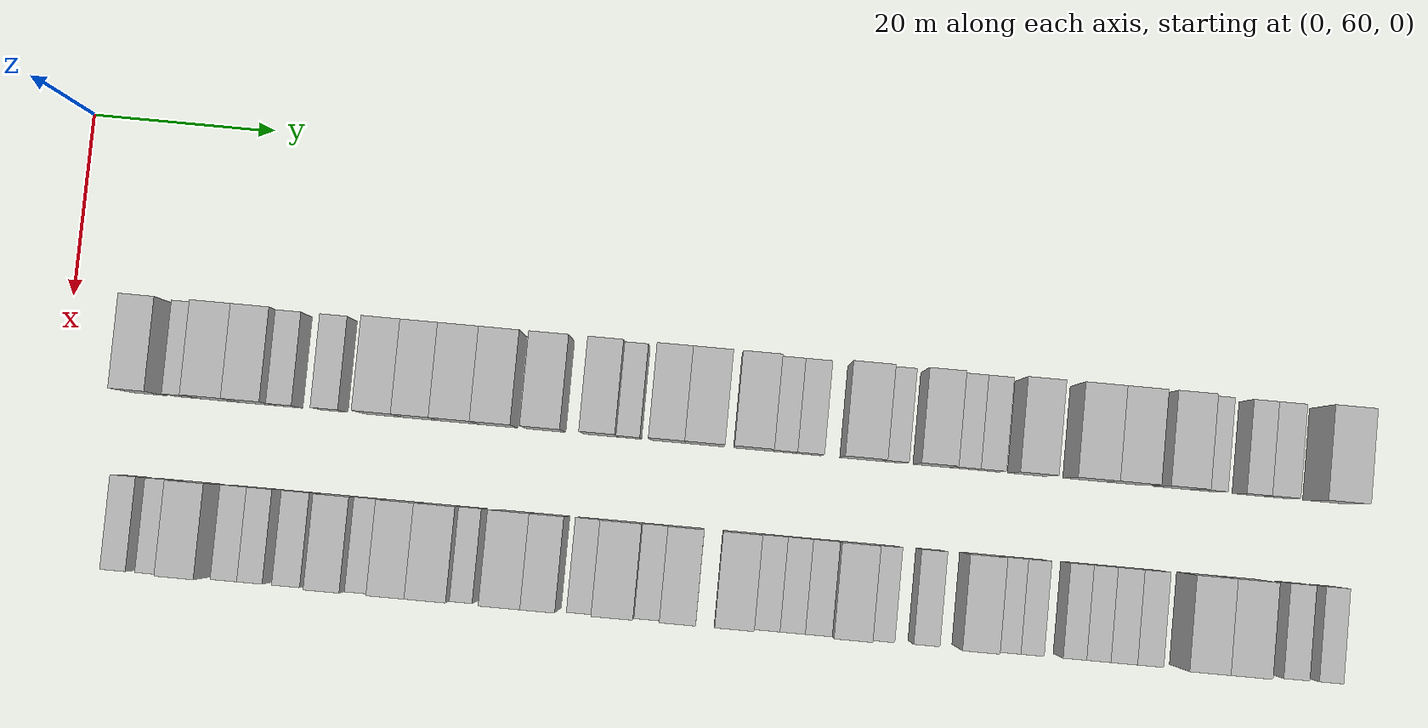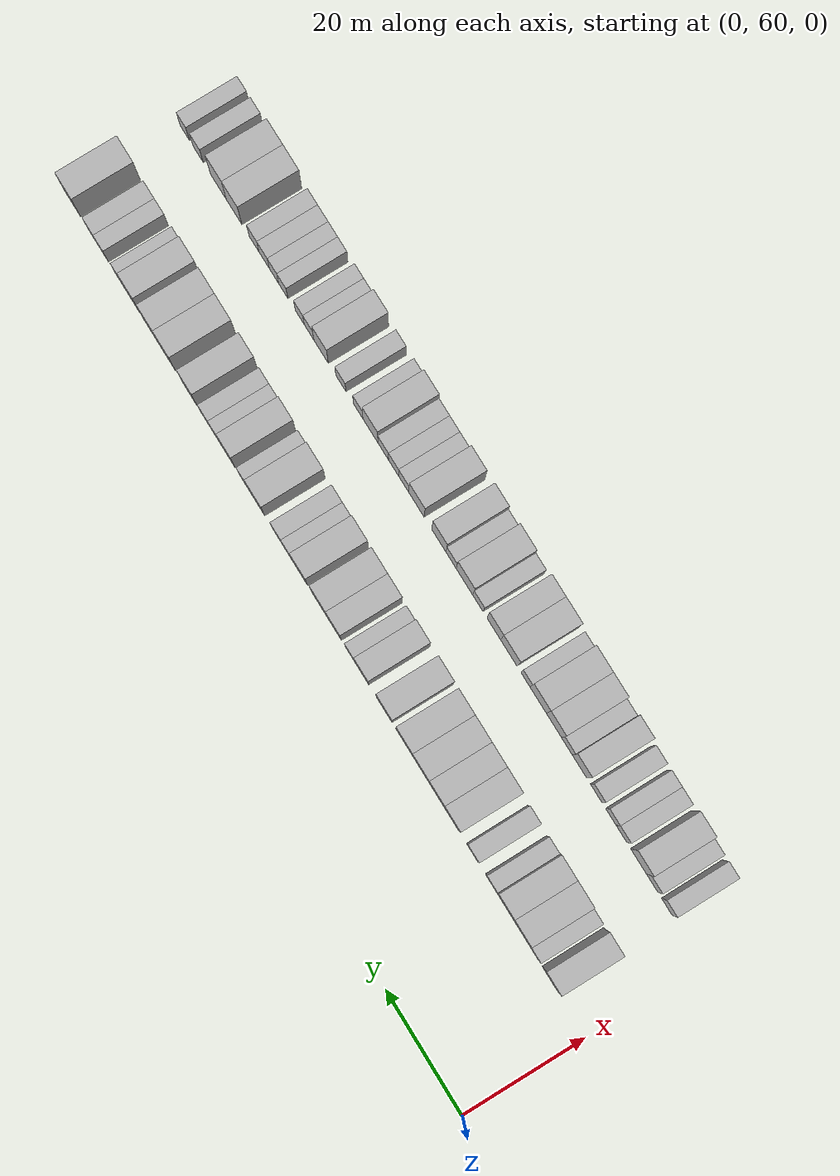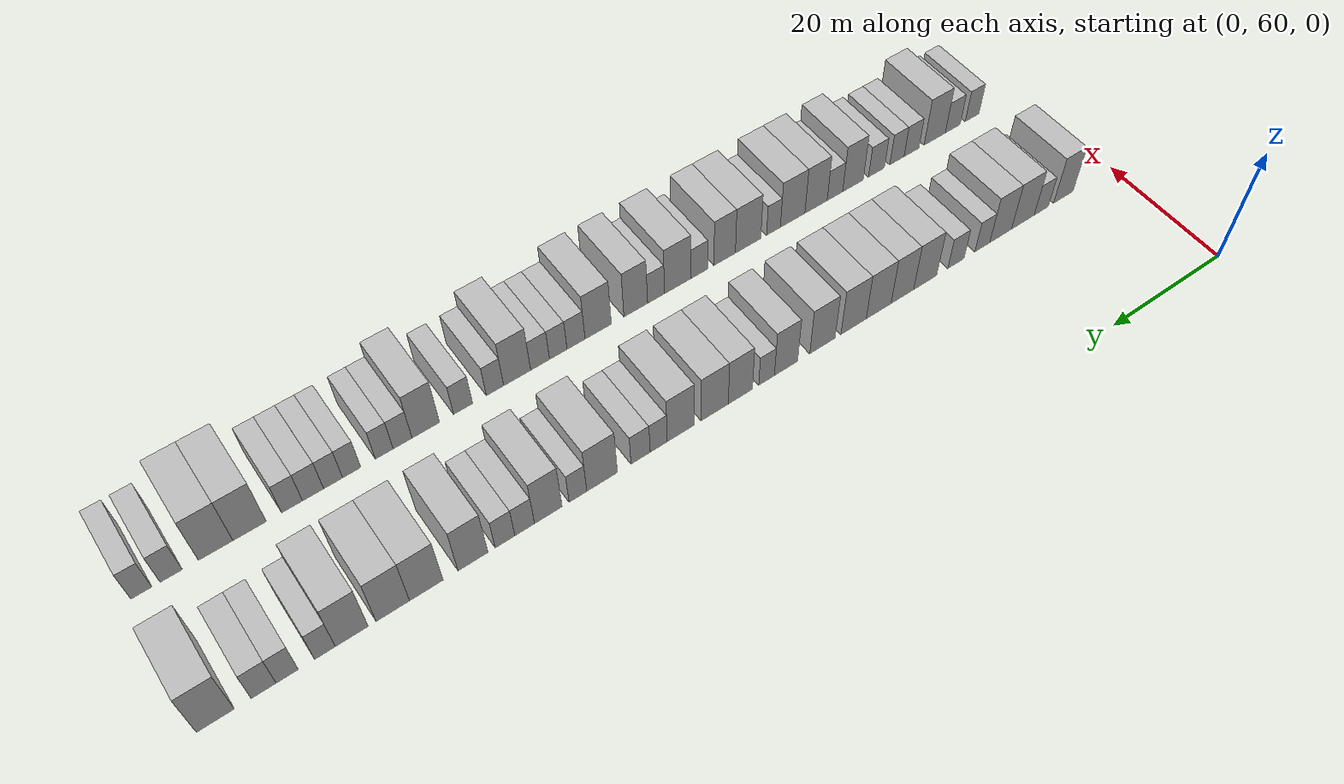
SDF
<sdf version="1.6">
 <world name="default">
  <model name="building_68">
   <static>1</static>
   <pose>25.0000 69.4559 0 0.000000 0.000000 0.000000</pose>
   <link name="link">
    <pose>0 0 4.50 0 0 0</pose>
    <collision name="collision"><geometry><box><size>10.0000 3.8007 9.0000</size></box></geometry></collision>
    <visual name="visual">
     <cast_shadows>0</cast_shadows>
     <geometry><box><size>10.0000 3.8007 9.0000</size></box></geometry>
     <material>
      <script>
       <uri>model://HANNAS_wall/materials/scripts</uri>
       <uri>model://HANNAS_wall/materials/textures</uri>
       <name>vrc/HANNAS_wall</name>
      </script>
     </material>
    </visual>
   </link>
  </model>
  <model name="building_69">
   <static>1</static>
   <pose>25.0000 73.7174 0 0.000000 0.000000 0.000000</pose>
   <link name="link">
    <pose>0 0 3.00 0 0 0</pose>
    <collision name="collision"><geometry><box><size>10.0000 2.7222 6.0000</size></box></geometry></collision>
    <visual name="visual">
     <cast_shadows>0</cast_shadows>
     <geometry><box><size>10.0000 2.7222 6.0000</size></box></geometry>
     <material>
      <script>
       <uri>model://HANNAS_wall/materials/scripts</uri>
       <uri>model://HANNAS_wall/materials/textures</uri>
       <name>vrc/HANNAS_wall</name>
      </script>
     </material>
    </visual>
   </link>
  </model>
  <model name="building_70">
   <static>1</static>
   <pose>25.0000 77.2315 0 0.000000 0.000000 0.000000</pose>
   <link name="link">
    <pose>0 0 4.50 0 0 0</pose>
    <collision name="collision"><geometry><box><size>10.0000 4.3060 9.0000</size></box></geometry></collision>
    <visual name="visual">
     <cast_shadows>0</cast_shadows>
     <geometry><box><size>10.0000 4.3060 9.0000</size></box></geometry>
     <material>
      <script>
       <uri>model://HANNAS_wall/materials/scripts</uri>
       <uri>model://HANNAS_wall/materials/textures</uri>
       <name>vrc/HANNAS_wall</name>
      </script>
     </material>
    </visual>
   </link>
  </model>
  <model name="building_71">
   <static>1</static>
   <pose>25.0000 81.4164 0 0.000000 0.000000 0.000000</pose>
   <link name="link">
    <pose>0 0 4.50 0 0 0</pose>
    <collision name="collision"><geometry><box><size>10.0000 4.0638 9.0000</size></box></geometry></collision>
    <visual name="visual">
     <cast_shadows>0</cast_shadows>
     <geometry><box><size>10.0000 4.0638 9.0000</size></box></geometry>
     <material>
      <script>
       <uri>model://HANNAS_wall/materials/scripts</uri>
       <uri>model://HANNAS_wall/materials/textures</uri>
       <name>vrc/HANNAS_wall</name>
      </script>
     </material>
    </visual>
   </link>
  </model>
  <model name="building_72">
   <static>1</static>
   <pose>25.0000 84.8159 0 0.000000 0.000000 0.000000</pose>
   <link name="link">
    <pose>0 0 3.00 0 0 0</pose>
    <collision name="collision"><geometry><box><size>10.0000 2.7354 6.0000</size></box></geometry></collision>
    <visual name="visual">
     <cast_shadows>0</cast_shadows>
     <geometry><box><size>10.0000 2.7354 6.0000</size></box></geometry>
     <material>
      <script>
       <uri>model://HANNAS_wall/materials/scripts</uri>
       <uri>model://HANNAS_wall/materials/textures</uri>
       <name>vrc/HANNAS_wall</name>
      </script>
     </material>
    </visual>
   </link>
  </model>
  <model name="building_73">
   <static>1</static>
   <pose>25.0000 89.6539 0 0.000000 0.000000 0.000000</pose>
   <link name="link">
    <pose>0 0 3.00 0 0 0</pose>
    <collision name="collision"><geometry><box><size>10.0000 2.9406 6.0000</size></box></geometry></collision>
    <visual name="visual">
     <cast_shadows>0</cast_shadows>
     <geometry><box><size>10.0000 2.9406 6.0000</size></box></geometry>
     <material>
      <script>
       <uri>model://HANNAS_wall/materials/scripts</uri>
       <uri>model://HANNAS_wall/materials/textures</uri>
       <name>vrc/HANNAS_wall</name>
      </script>
     </material>
    </visual>
   </link>
  </model>
  <model name="building_74">
   <static>1</static>
   <pose>25.0000 95.1711 0 0.000000 0.000000 0.000000</pose>
   <link name="link">
    <pose>0 0 4.50 0 0 0</pose>
    <collision name="collision"><geometry><box><size>10.0000 4.0937 9.0000</size></box></geometry></collision>
    <visual name="visual">
     <cast_shadows>0</cast_shadows>
     <geometry><box><size>10.0000 4.0937 9.0000</size></box></geometry>
     <material>
      <script>
       <uri>model://HANNAS_wall/materials/scripts</uri>
       <uri>model://HANNAS_wall/materials/textures</uri>
       <name>vrc/HANNAS_wall</name>
      </script>
     </material>
    </visual>
   </link>
  </model>
  <model name="building_75">
   <static>1</static>
   <pose>25.0000 99.1989 0 0.000000 0.000000 0.000000</pose>
   <link name="link">
    <pose>0 0 4.50 0 0 0</pose>
    <collision name="collision"><geometry><box><size>10.0000 3.9620 9.0000</size></box></geometry></collision>
    <visual name="visual">
     <cast_shadows>0</cast_shadows>
     <geometry><box><size>10.0000 3.9620 9.0000</size></box></geometry>
     <material>
      <script>
       <uri>model://HANNAS_wall/materials/scripts</uri>
       <uri>model://HANNAS_wall/materials/textures</uri>
       <name>vrc/HANNAS_wall</name>
      </script>
     </material>
    </visual>
   </link>
  </model>
  <model name="building_76">
   <static>1</static>
   <pose>25.0000 103.3308 0 0.000000 0.000000 0.000000</pose>
   <link name="link">
    <pose>0 0 4.50 0 0 0</pose>
    <collision name="collision"><geometry><box><size>10.0000 4.3018 9.0000</size></box></geometry></collision>
    <visual name="visual">
     <cast_shadows>0</cast_shadows>
     <geometry><box><size>10.0000 4.3018 9.0000</size></box></geometry>
     <material>
      <script>
       <uri>model://HANNAS_wall/materials/scripts</uri>
       <uri>model://HANNAS_wall/materials/textures</uri>
       <name>vrc/HANNAS_wall</name>
      </script>
     </material>
    </visual>
   </link>
  </model>
  <model name="building_77">
   <static>1</static>
   <pose>25.0000 107.6206 0 0.000000 0.000000 0.000000</pose>
   <link name="link">
    <pose>0 0 4.50 0 0 0</pose>
    <collision name="collision"><geometry><box><size>10.0000 4.2779 9.0000</size></box></geometry></collision>
    <visual name="visual">
     <cast_shadows>0</cast_shadows>
     <geometry><box><size>10.0000 4.2779 9.0000</size></box></geometry>
     <material>
      <script>
       <uri>model://HANNAS_wall/materials/scripts</uri>
       <uri>model://HANNAS_wall/materials/textures</uri>
       <name>vrc/HANNAS_wall</name>
      </script>
     </material>
    </visual>
   </link>
  </model>
  <model name="building_78">
   <static>1</static>
   <pose>25.0000 112.8596 0 0.000000 0.000000 0.000000</pose>
   <link name="link">
    <pose>0 0 4.50 0 0 0</pose>
    <collision name="collision"><geometry><box><size>10.0000 4.2000 9.0000</size></box></geometry></collision>
    <visual name="visual">
     <cast_shadows>0</cast_shadows>
     <geometry><box><size>10.0000 4.2000 9.0000</size></box></geometry>
     <material>
      <script>
       <uri>model://HANNAS_wall/materials/scripts</uri>
       <uri>model://HANNAS_wall/materials/textures</uri>
       <name>vrc/HANNAS_wall</name>
      </script>
     </material>
    </visual>
   </link>
  </model>
  <model name="building_79">
   <static>1</static>
   <pose>25.0000 118.8472 0 0.000000 0.000000 0.000000</pose>
   <link name="link">
    <pose>0 0 4.50 0 0 0</pose>
    <collision name="collision"><geometry><box><size>10.0000 3.7751 9.0000</size></box></geometry></collision>
    <visual name="visual">
     <cast_shadows>0</cast_shadows>
     <geometry><box><size>10.0000 3.7751 9.0000</size></box></geometry>
     <material>
      <script>
       <uri>model://HANNAS_wall/materials/scripts</uri>
       <uri>model://HANNAS_wall/materials/textures</uri>
       <name>vrc/HANNAS_wall</name>
      </script>
     </material>
    </visual>
   </link>
  </model>
  <model name="building_80">
   <static>1</static>
   <pose>25.0000 121.9937 0 0.000000 0.000000 0.000000</pose>
   <link name="link">
    <pose>0 0 3.00 0 0 0</pose>
    <collision name="collision"><geometry><box><size>10.0000 2.5179 6.0000</size></box></geometry></collision>
    <visual name="visual">
     <cast_shadows>0</cast_shadows>
     <geometry><box><size>10.0000 2.5179 6.0000</size></box></geometry>
     <material>
      <script>
       <uri>model://HANNAS_wall/materials/scripts</uri>
       <uri>model://HANNAS_wall/materials/textures</uri>
       <name>vrc/HANNAS_wall</name>
      </script>
     </material>
    </visual>
   </link>
  </model>
  <model name="building_81">
   <static>1</static>
   <pose>25.0000 126.1621 0 0.000000 0.000000 0.000000</pose>
   <link name="link">
    <pose>0 0 4.50 0 0 0</pose>
    <collision name="collision"><geometry><box><size>10.0000 3.8190 9.0000</size></box></geometry></collision>
    <visual name="visual">
     <cast_shadows>0</cast_shadows>
     <geometry><box><size>10.0000 3.8190 9.0000</size></box></geometry>
     <material>
      <script>
       <uri>model://HANNAS_wall/materials/scripts</uri>
       <uri>model://HANNAS_wall/materials/textures</uri>
       <name>vrc/HANNAS_wall</name>
      </script>
     </material>
    </visual>
   </link>
  </model>
  <model name="building_82">
   <static>1</static>
   <pose>25.0000 130.1893 0 0.000000 0.000000 0.000000</pose>
   <link name="link">
    <pose>0 0 4.50 0 0 0</pose>
    <collision name="collision"><geometry><box><size>10.0000 4.2354 9.0000</size></box></geometry></collision>
    <visual name="visual">
     <cast_shadows>0</cast_shadows>
     <geometry><box><size>10.0000 4.2354 9.0000</size></box></geometry>
     <material>
      <script>
       <uri>model://HANNAS_wall/materials/scripts</uri>
       <uri>model://HANNAS_wall/materials/textures</uri>
       <name>vrc/HANNAS_wall</name>
      </script>
     </material>
    </visual>
   </link>
  </model>
  <model name="building_83">
   <static>1</static>
   <pose>25.0000 135.3894 0 0.000000 0.000000 0.000000</pose>
   <link name="link">
    <pose>0 0 4.50 0 0 0</pose>
    <collision name="collision"><geometry><box><size>10.0000 4.1647 9.0000</size></box></geometry></collision>
    <visual name="visual">
     <cast_shadows>0</cast_shadows>
     <geometry><box><size>10.0000 4.1647 9.0000</size></box></geometry>
     <material>
      <script>
       <uri>model://HANNAS_wall/materials/scripts</uri>
       <uri>model://HANNAS_wall/materials/textures</uri>
       <name>vrc/HANNAS_wall</name>
      </script>
     </material>
    </visual>
   </link>
  </model>
  <model name="building_84">
   <static>1</static>
   <pose>25.0000 138.7558 0 0.000000 0.000000 0.000000</pose>
   <link name="link">
    <pose>0 0 3.00 0 0 0</pose>
    <collision name="collision"><geometry><box><size>10.0000 2.5683 6.0000</size></box></geometry></collision>
    <visual name="visual">
     <cast_shadows>0</cast_shadows>
     <geometry><box><size>10.0000 2.5683 6.0000</size></box></geometry>
     <material>
      <script>
       <uri>model://HANNAS_wall/materials/scripts</uri>
       <uri>model://HANNAS_wall/materials/textures</uri>
       <name>vrc/HANNAS_wall</name>
      </script>
     </material>
    </visual>
   </link>
  </model>
  <model name="building_85">
   <static>1</static>
   <pose>25.0000 141.4679 0 0.000000 0.000000 0.000000</pose>
   <link name="link">
    <pose>0 0 3.00 0 0 0</pose>
    <collision name="collision"><geometry><box><size>10.0000 2.8558 6.0000</size></box></geometry></collision>
    <visual name="visual">
     <cast_shadows>0</cast_shadows>
     <geometry><box><size>10.0000 2.8558 6.0000</size></box></geometry>
     <material>
      <script>
       <uri>model://HANNAS_wall/materials/scripts</uri>
       <uri>model://HANNAS_wall/materials/textures</uri>
       <name>vrc/HANNAS_wall</name>
      </script>
     </material>
    </visual>
   </link>
  </model>
  <model name="building_86">
   <static>1</static>
   <pose>25.0000 147.1205 0 0.000000 0.000000 0.000000</pose>
   <link name="link">
    <pose>0 0 4.50 0 0 0</pose>
    <collision name="collision"><geometry><box><size>10.0000 4.4494 9.0000</size></box></geometry></collision>
    <visual name="visual">
     <cast_shadows>0</cast_shadows>
     <geometry><box><size>10.0000 4.4494 9.0000</size></box></geometry>
     <material>
      <script>
       <uri>model://HANNAS_wall/materials/scripts</uri>
       <uri>model://HANNAS_wall/materials/textures</uri>
       <name>vrc/HANNAS_wall</name>
      </script>
     </material>
    </visual>
   </link>
  </model>
  <model name="building_87">
   <static>1</static>
   <pose>25.0000 150.6152 0 0.000000 0.000000 0.000000</pose>
   <link name="link">
    <pose>0 0 3.00 0 0 0</pose>
    <collision name="collision"><geometry><box><size>10.0000 2.5400 6.0000</size></box></geometry></collision>
    <visual name="visual">
     <cast_shadows>0</cast_shadows>
     <geometry><box><size>10.0000 2.5400 6.0000</size></box></geometry>
     <material>
      <script>
       <uri>model://HANNAS_wall/materials/scripts</uri>
       <uri>model://HANNAS_wall/materials/textures</uri>
       <name>vrc/HANNAS_wall</name>
      </script>
     </material>
    </visual>
   </link>
  </model>
  <model name="building_88">
   <static>1</static>
   <pose>25.0000 154.8274 0 0.000000 0.000000 0.000000</pose>
   <link name="link">
    <pose>0 0 4.50 0 0 0</pose>
    <collision name="collision"><geometry><box><size>10.0000 3.8843 9.0000</size></box></geometry></collision>
    <visual name="visual">
     <cast_shadows>0</cast_shadows>
     <geometry><box><size>10.0000 3.8843 9.0000</size></box></geometry>
     <material>
      <script>
       <uri>model://HANNAS_wall/materials/scripts</uri>
       <uri>model://HANNAS_wall/materials/textures</uri>
       <name>vrc/HANNAS_wall</name>
      </script>
     </material>
    </visual>
   </link>
  </model>
  <model name="building_89">
   <static>1</static>
   <pose>25.0000 158.1349 0 0.000000 0.000000 0.000000</pose>
   <link name="link">
    <pose>0 0 3.00 0 0 0</pose>
    <collision name="collision"><geometry><box><size>10.0000 2.7309 6.0000</size></box></geometry></collision>
    <visual name="visual">
     <cast_shadows>0</cast_shadows>
     <geometry><box><size>10.0000 2.7309 6.0000</size></box></geometry>
     <material>
      <script>
       <uri>model://HANNAS_wall/materials/scripts</uri>
       <uri>model://HANNAS_wall/materials/textures</uri>
       <name>vrc/HANNAS_wall</name>
      </script>
     </material>
    </visual>
   </link>
  </model>
  <model name="building_90">
   <static>1</static>
   <pose>25.0000 160.8501 0 0.000000 0.000000 0.000000</pose>
   <link name="link">
    <pose>0 0 3.00 0 0 0</pose>
    <collision name="collision"><geometry><box><size>10.0000 2.6995 6.0000</size></box></geometry></collision>
    <visual name="visual">
     <cast_shadows>0</cast_shadows>
     <geometry><box><size>10.0000 2.6995 6.0000</size></box></geometry>
     <material>
      <script>
       <uri>model://HANNAS_wall/materials/scripts</uri>
       <uri>model://HANNAS_wall/materials/textures</uri>
       <name>vrc/HANNAS_wall</name>
      </script>
     </material>
    </visual>
   </link>
  </model>
  <model name="building_91">
   <static>1</static>
   <pose>25.0000 165.2189 0 0.000000 0.000000 0.000000</pose>
   <link name="link">
    <pose>0 0 4.50 0 0 0</pose>
    <collision name="collision"><geometry><box><size>10.0000 4.0380 9.0000</size></box></geometry></collision>
    <visual name="visual">
     <cast_shadows>0</cast_shadows>
     <geometry><box><size>10.0000 4.0380 9.0000</size></box></geometry>
     <material>
      <script>
       <uri>model://HANNAS_wall/materials/scripts</uri>
       <uri>model://HANNAS_wall/materials/textures</uri>
       <name>vrc/HANNAS_wall</name>
      </script>
     </material>
    </visual>
   </link>
  </model>
  <model name="building_92">
   <static>1</static>
   <pose>25.0000 171.4387 0 0.000000 0.000000 0.000000</pose>
   <link name="link">
    <pose>0 0 4.50 0 0 0</pose>
    <collision name="collision"><geometry><box><size>10.0000 4.4017 9.0000</size></box></geometry></collision>
    <visual name="visual">
     <cast_shadows>0</cast_shadows>
     <geometry><box><size>10.0000 4.4017 9.0000</size></box></geometry>
     <material>
      <script>
       <uri>model://HANNAS_wall/materials/scripts</uri>
       <uri>model://HANNAS_wall/materials/textures</uri>
       <name>vrc/HANNAS_wall</name>
      </script>
     </material>
    </visual>
   </link>
  </model>
  <model name="building_93">
   <static>1</static>
   <pose>25.0000 175.7985 0 0.000000 0.000000 0.000000</pose>
   <link name="link">
    <pose>0 0 4.50 0 0 0</pose>
    <collision name="collision"><geometry><box><size>10.0000 4.3179 9.0000</size></box></geometry></collision>
    <visual name="visual">
     <cast_shadows>0</cast_shadows>
     <geometry><box><size>10.0000 4.3179 9.0000</size></box></geometry>
     <material>
      <script>
       <uri>model://HANNAS_wall/materials/scripts</uri>
       <uri>model://HANNAS_wall/materials/textures</uri>
       <name>vrc/HANNAS_wall</name>
      </script>
     </material>
    </visual>
   </link>
  </model>
  <model name="building_94">
   <static>1</static>
   <pose>25.0000 181.0391 0 0.000000 0.000000 0.000000</pose>
   <link name="link">
    <pose>0 0 4.50 0 0 0</pose>
    <collision name="collision"><geometry><box><size>10.0000 4.1634 9.0000</size></box></geometry></collision>
    <visual name="visual">
     <cast_shadows>0</cast_shadows>
     <geometry><box><size>10.0000 4.1634 9.0000</size></box></geometry>
     <material>
      <script>
       <uri>model://HANNAS_wall/materials/scripts</uri>
       <uri>model://HANNAS_wall/materials/textures</uri>
       <name>vrc/HANNAS_wall</name>
      </script>
     </material>
    </visual>
   </link>
  </model>
  <model name="building_95">
   <static>1</static>
   <pose>25.0000 184.4058 0 0.000000 0.000000 0.000000</pose>
   <link name="link">
    <pose>0 0 3.00 0 0 0</pose>
    <collision name="collision"><geometry><box><size>10.0000 2.5699 6.0000</size></box></geometry></collision>
    <visual name="visual">
     <cast_shadows>0</cast_shadows>
     <geometry><box><size>10.0000 2.5699 6.0000</size></box></geometry>
     <material>
      <script>
       <uri>model://HANNAS_wall/materials/scripts</uri>
       <uri>model://HANNAS_wall/materials/textures</uri>
       <name>vrc/HANNAS_wall</name>
      </script>
     </material>
    </visual>
   </link>
  </model>
  <model name="building_96">
   <static>1</static>
   <pose>25.0000 189.0411 0 0.000000 0.000000 0.000000</pose>
   <link name="link">
    <pose>0 0 3.00 0 0 0</pose>
    <collision name="collision"><geometry><box><size>10.0000 2.7007 6.0000</size></box></geometry></collision>
    <visual name="visual">
     <cast_shadows>0</cast_shadows>
     <geometry><box><size>10.0000 2.7007 6.0000</size></box></geometry>
     <material>
      <script>
       <uri>model://HANNAS_wall/materials/scripts</uri>
       <uri>model://HANNAS_wall/materials/textures</uri>
       <name>vrc/HANNAS_wall</name>
      </script>
     </material>
    </visual>
   </link>
  </model>
  <model name="building_97">
   <static>1</static>
   <pose>25.0000 191.8899 0 0.000000 0.000000 0.000000</pose>
   <link name="link">
    <pose>0 0 3.00 0 0 0</pose>
    <collision name="collision"><geometry><box><size>10.0000 2.9970 6.0000</size></box></geometry></collision>
    <visual name="visual">
     <cast_shadows>0</cast_shadows>
     <geometry><box><size>10.0000 2.9970 6.0000</size></box></geometry>
     <material>
      <script>
       <uri>model://HANNAS_wall/materials/scripts</uri>
       <uri>model://HANNAS_wall/materials/textures</uri>
       <name>vrc/HANNAS_wall</name>
      </script>
     </material>
    </visual>
   </link>
  </model>
  <model name="building_98">
   <static>1</static>
   <pose>25.0000 197.6163 0 0.000000 0.000000 0.000000</pose>
   <link name="link">
    <pose>0 0 4.50 0 0 0</pose>
    <collision name="collision"><geometry><box><size>10.0000 4.4556 9.0000</size></box></geometry></collision>
    <visual name="visual">
     <cast_shadows>0</cast_shadows>
     <geometry><box><size>10.0000 4.4556 9.0000</size></box></geometry>
     <material>
      <script>
       <uri>model://HANNAS_wall/materials/scripts</uri>
       <uri>model://HANNAS_wall/materials/textures</uri>
       <name>vrc/HANNAS_wall</name>
      </script>
     </material>
    </visual>
   </link>
  </model>
  <model name="building_164">
   <static>1</static>
   <pose>44.0000 69.2109 0 0.000000 0.000000 0.000000</pose>
   <link name="link">
    <pose>0 0 3.00 0 0 0</pose>
    <collision name="collision"><geometry><box><size>10.0000 2.7190 6.0000</size></box></geometry></collision>
    <visual name="visual">
     <cast_shadows>0</cast_shadows>
     <geometry><box><size>10.0000 2.7190 6.0000</size></box></geometry>
     <material>
      <script>
       <uri>model://HANNAS_wall/materials/scripts</uri>
       <uri>model://HANNAS_wall/materials/textures</uri>
       <name>vrc/HANNAS_wall</name>
      </script>
     </material>
    </visual>
   </link>
  </model>
  <model name="building_165">
   <static>1</static>
   <pose>44.0000 73.0182 0 0.000000 0.000000 0.000000</pose>
   <link name="link">
    <pose>0 0 3.00 0 0 0</pose>
    <collision name="collision"><geometry><box><size>10.0000 2.8957 6.0000</size></box></geometry></collision>
    <visual name="visual">
     <cast_shadows>0</cast_shadows>
     <geometry><box><size>10.0000 2.8957 6.0000</size></box></geometry>
     <material>
      <script>
       <uri>model://HANNAS_wall/materials/scripts</uri>
       <uri>model://HANNAS_wall/materials/textures</uri>
       <name>vrc/HANNAS_wall</name>
      </script>
     </material>
    </visual>
   </link>
  </model>
  <model name="building_166">
   <static>1</static>
   <pose>44.0000 76.5158 0 0.000000 0.000000 0.000000</pose>
   <link name="link">
    <pose>0 0 4.50 0 0 0</pose>
    <collision name="collision"><geometry><box><size>10.0000 4.0994 9.0000</size></box></geometry></collision>
    <visual name="visual">
     <cast_shadows>0</cast_shadows>
     <geometry><box><size>10.0000 4.0994 9.0000</size></box></geometry>
     <material>
      <script>
       <uri>model://HANNAS_wall/materials/scripts</uri>
       <uri>model://HANNAS_wall/materials/textures</uri>
       <name>vrc/HANNAS_wall</name>
      </script>
     </material>
    </visual>
   </link>
  </model>
  <model name="building_167">
   <static>1</static>
   <pose>44.0000 80.9676 0 0.000000 0.000000 0.000000</pose>
   <link name="link">
    <pose>0 0 3.00 0 0 0</pose>
    <collision name="collision"><geometry><box><size>10.0000 2.8043 6.0000</size></box></geometry></collision>
    <visual name="visual">
     <cast_shadows>0</cast_shadows>
     <geometry><box><size>10.0000 2.8043 6.0000</size></box></geometry>
     <material>
      <script>
       <uri>model://HANNAS_wall/materials/scripts</uri>
       <uri>model://HANNAS_wall/materials/textures</uri>
       <name>vrc/HANNAS_wall</name>
      </script>
     </material>
    </visual>
   </link>
  </model>
  <model name="building_168">
   <static>1</static>
   <pose>44.0000 83.7204 0 0.000000 0.000000 0.000000</pose>
   <link name="link">
    <pose>0 0 3.00 0 0 0</pose>
    <collision name="collision"><geometry><box><size>10.0000 2.7013 6.0000</size></box></geometry></collision>
    <visual name="visual">
     <cast_shadows>0</cast_shadows>
     <geometry><box><size>10.0000 2.7013 6.0000</size></box></geometry>
     <material>
      <script>
       <uri>model://HANNAS_wall/materials/scripts</uri>
       <uri>model://HANNAS_wall/materials/textures</uri>
       <name>vrc/HANNAS_wall</name>
      </script>
     </material>
    </visual>
   </link>
  </model>
  <model name="building_169">
   <static>1</static>
   <pose>44.0000 87.5551 0 0.000000 0.000000 0.000000</pose>
   <link name="link">
    <pose>0 0 3.00 0 0 0</pose>
    <collision name="collision"><geometry><box><size>10.0000 2.9681 6.0000</size></box></geometry></collision>
    <visual name="visual">
     <cast_shadows>0</cast_shadows>
     <geometry><box><size>10.0000 2.9681 6.0000</size></box></geometry>
     <material>
      <script>
       <uri>model://HANNAS_wall/materials/scripts</uri>
       <uri>model://HANNAS_wall/materials/textures</uri>
       <name>vrc/HANNAS_wall</name>
      </script>
     </material>
    </visual>
   </link>
  </model>
  <model name="building_170">
   <static>1</static>
   <pose>44.0000 91.9113 0 0.000000 0.000000 0.000000</pose>
   <link name="link">
    <pose>0 0 4.50 0 0 0</pose>
    <collision name="collision"><geometry><box><size>10.0000 3.7442 9.0000</size></box></geometry></collision>
    <visual name="visual">
     <cast_shadows>0</cast_shadows>
     <geometry><box><size>10.0000 3.7442 9.0000</size></box></geometry>
     <material>
      <script>
       <uri>model://HANNAS_wall/materials/scripts</uri>
       <uri>model://HANNAS_wall/materials/textures</uri>
       <name>vrc/HANNAS_wall</name>
      </script>
     </material>
    </visual>
   </link>
  </model>
  <model name="building_171">
   <static>1</static>
   <pose>44.0000 95.1846 0 0.000000 0.000000 0.000000</pose>
   <link name="link">
    <pose>0 0 3.00 0 0 0</pose>
    <collision name="collision"><geometry><box><size>10.0000 2.8024 6.0000</size></box></geometry></collision>
    <visual name="visual">
     <cast_shadows>0</cast_shadows>
     <geometry><box><size>10.0000 2.8024 6.0000</size></box></geometry>
     <material>
      <script>
       <uri>model://HANNAS_wall/materials/scripts</uri>
       <uri>model://HANNAS_wall/materials/textures</uri>
       <name>vrc/HANNAS_wall</name>
      </script>
     </material>
    </visual>
   </link>
  </model>
  <model name="building_172">
   <static>1</static>
   <pose>44.0000 98.5721 0 0.000000 0.000000 0.000000</pose>
   <link name="link">
    <pose>0 0 4.50 0 0 0</pose>
    <collision name="collision"><geometry><box><size>10.0000 3.9727 9.0000</size></box></geometry></collision>
    <visual name="visual">
     <cast_shadows>0</cast_shadows>
     <geometry><box><size>10.0000 3.9727 9.0000</size></box></geometry>
     <material>
      <script>
       <uri>model://HANNAS_wall/materials/scripts</uri>
       <uri>model://HANNAS_wall/materials/textures</uri>
       <name>vrc/HANNAS_wall</name>
      </script>
     </material>
    </visual>
   </link>
  </model>
  <model name="building_173">
   <static>1</static>
   <pose>44.0000 102.7237 0 0.000000 0.000000 0.000000</pose>
   <link name="link">
    <pose>0 0 4.50 0 0 0</pose>
    <collision name="collision"><geometry><box><size>10.0000 4.3306 9.0000</size></box></geometry></collision>
    <visual name="visual">
     <cast_shadows>0</cast_shadows>
     <geometry><box><size>10.0000 4.3306 9.0000</size></box></geometry>
     <material>
      <script>
       <uri>model://HANNAS_wall/materials/scripts</uri>
       <uri>model://HANNAS_wall/materials/textures</uri>
       <name>vrc/HANNAS_wall</name>
      </script>
     </material>
    </visual>
   </link>
  </model>
  <model name="building_174">
   <static>1</static>
   <pose>44.0000 106.0937 0 0.000000 0.000000 0.000000</pose>
   <link name="link">
    <pose>0 0 3.00 0 0 0</pose>
    <collision name="collision"><geometry><box><size>10.0000 2.4094 6.0000</size></box></geometry></collision>
    <visual name="visual">
     <cast_shadows>0</cast_shadows>
     <geometry><box><size>10.0000 2.4094 6.0000</size></box></geometry>
     <material>
      <script>
       <uri>model://HANNAS_wall/materials/scripts</uri>
       <uri>model://HANNAS_wall/materials/textures</uri>
       <name>vrc/HANNAS_wall</name>
      </script>
     </material>
    </visual>
   </link>
  </model>
  <model name="building_175">
   <static>1</static>
   <pose>44.0000 110.4657 0 0.000000 0.000000 0.000000</pose>
   <link name="link">
    <pose>0 0 4.50 0 0 0</pose>
    <collision name="collision"><geometry><box><size>10.0000 4.3346 9.0000</size></box></geometry></collision>
    <visual name="visual">
     <cast_shadows>0</cast_shadows>
     <geometry><box><size>10.0000 4.3346 9.0000</size></box></geometry>
     <material>
      <script>
       <uri>model://HANNAS_wall/materials/scripts</uri>
       <uri>model://HANNAS_wall/materials/textures</uri>
       <name>vrc/HANNAS_wall</name>
      </script>
     </material>
    </visual>
   </link>
  </model>
  <model name="building_176">
   <static>1</static>
   <pose>44.0000 114.4547 0 0.000000 0.000000 0.000000</pose>
   <link name="link">
    <pose>0 0 4.50 0 0 0</pose>
    <collision name="collision"><geometry><box><size>10.0000 3.6434 9.0000</size></box></geometry></collision>
    <visual name="visual">
     <cast_shadows>0</cast_shadows>
     <geometry><box><size>10.0000 3.6434 9.0000</size></box></geometry>
     <material>
      <script>
       <uri>model://HANNAS_wall/materials/scripts</uri>
       <uri>model://HANNAS_wall/materials/textures</uri>
       <name>vrc/HANNAS_wall</name>
      </script>
     </material>
    </visual>
   </link>
  </model>
  <model name="building_177">
   <static>1</static>
   <pose>44.0000 118.6627 0 0.000000 0.000000 0.000000</pose>
   <link name="link">
    <pose>0 0 3.00 0 0 0</pose>
    <collision name="collision"><geometry><box><size>10.0000 2.7724 6.0000</size></box></geometry></collision>
    <visual name="visual">
     <cast_shadows>0</cast_shadows>
     <geometry><box><size>10.0000 2.7724 6.0000</size></box></geometry>
     <material>
      <script>
       <uri>model://HANNAS_wall/materials/scripts</uri>
       <uri>model://HANNAS_wall/materials/textures</uri>
       <name>vrc/HANNAS_wall</name>
      </script>
     </material>
    </visual>
   </link>
  </model>
  <model name="building_178">
   <static>1</static>
   <pose>44.0000 122.2330 0 0.000000 0.000000 0.000000</pose>
   <link name="link">
    <pose>0 0 4.50 0 0 0</pose>
    <collision name="collision"><geometry><box><size>10.0000 4.3684 9.0000</size></box></geometry></collision>
    <visual name="visual">
     <cast_shadows>0</cast_shadows>
     <geometry><box><size>10.0000 4.3684 9.0000</size></box></geometry>
     <material>
      <script>
       <uri>model://HANNAS_wall/materials/scripts</uri>
       <uri>model://HANNAS_wall/materials/textures</uri>
       <name>vrc/HANNAS_wall</name>
      </script>
     </material>
    </visual>
   </link>
  </model>
  <model name="building_179">
   <static>1</static>
   <pose>44.0000 125.7917 0 0.000000 0.000000 0.000000</pose>
   <link name="link">
    <pose>0 0 3.00 0 0 0</pose>
    <collision name="collision"><geometry><box><size>10.0000 2.7489 6.0000</size></box></geometry></collision>
    <visual name="visual">
     <cast_shadows>0</cast_shadows>
     <geometry><box><size>10.0000 2.7489 6.0000</size></box></geometry>
     <material>
      <script>
       <uri>model://HANNAS_wall/materials/scripts</uri>
       <uri>model://HANNAS_wall/materials/textures</uri>
       <name>vrc/HANNAS_wall</name>
      </script>
     </material>
    </visual>
   </link>
  </model>
  <model name="building_180">
   <static>1</static>
   <pose>44.0000 129.0615 0 0.000000 0.000000 0.000000</pose>
   <link name="link">
    <pose>0 0 4.50 0 0 0</pose>
    <collision name="collision"><geometry><box><size>10.0000 3.7906 9.0000</size></box></geometry></collision>
    <visual name="visual">
     <cast_shadows>0</cast_shadows>
     <geometry><box><size>10.0000 3.7906 9.0000</size></box></geometry>
     <material>
      <script>
       <uri>model://HANNAS_wall/materials/scripts</uri>
       <uri>model://HANNAS_wall/materials/textures</uri>
       <name>vrc/HANNAS_wall</name>
      </script>
     </material>
    </visual>
   </link>
  </model>
  <model name="building_181">
   <static>1</static>
   <pose>44.0000 135.0156 0 0.000000 0.000000 0.000000</pose>
   <link name="link">
    <pose>0 0 4.50 0 0 0</pose>
    <collision name="collision"><geometry><box><size>10.0000 4.1175 9.0000</size></box></geometry></collision>
    <visual name="visual">
     <cast_shadows>0</cast_shadows>
     <geometry><box><size>10.0000 4.1175 9.0000</size></box></geometry>
     <material>
      <script>
       <uri>model://HANNAS_wall/materials/scripts</uri>
       <uri>model://HANNAS_wall/materials/textures</uri>
       <name>vrc/HANNAS_wall</name>
      </script>
     </material>
    </visual>
   </link>
  </model>
  <model name="building_182">
   <static>1</static>
   <pose>44.0000 138.4654 0 0.000000 0.000000 0.000000</pose>
   <link name="link">
    <pose>0 0 3.00 0 0 0</pose>
    <collision name="collision"><geometry><box><size>10.0000 2.7822 6.0000</size></box></geometry></collision>
    <visual name="visual">
     <cast_shadows>0</cast_shadows>
     <geometry><box><size>10.0000 2.7822 6.0000</size></box></geometry>
     <material>
      <script>
       <uri>model://HANNAS_wall/materials/scripts</uri>
       <uri>model://HANNAS_wall/materials/textures</uri>
       <name>vrc/HANNAS_wall</name>
      </script>
     </material>
    </visual>
   </link>
  </model>
  <model name="building_183">
   <static>1</static>
   <pose>44.0000 141.1943 0 0.000000 0.000000 0.000000</pose>
   <link name="link">
    <pose>0 0 3.00 0 0 0</pose>
    <collision name="collision"><geometry><box><size>10.0000 2.6756 6.0000</size></box></geometry></collision>
    <visual name="visual">
     <cast_shadows>0</cast_shadows>
     <geometry><box><size>10.0000 2.6756 6.0000</size></box></geometry>
     <material>
      <script>
       <uri>model://HANNAS_wall/materials/scripts</uri>
       <uri>model://HANNAS_wall/materials/textures</uri>
       <name>vrc/HANNAS_wall</name>
      </script>
     </material>
    </visual>
   </link>
  </model>
  <model name="building_184">
   <static>1</static>
   <pose>44.0000 143.9566 0 0.000000 0.000000 0.000000</pose>
   <link name="link">
    <pose>0 0 3.00 0 0 0</pose>
    <collision name="collision"><geometry><box><size>10.0000 2.8489 6.0000</size></box></geometry></collision>
    <visual name="visual">
     <cast_shadows>0</cast_shadows>
     <geometry><box><size>10.0000 2.8489 6.0000</size></box></geometry>
     <material>
      <script>
       <uri>model://HANNAS_wall/materials/scripts</uri>
       <uri>model://HANNAS_wall/materials/textures</uri>
       <name>vrc/HANNAS_wall</name>
      </script>
     </material>
    </visual>
   </link>
  </model>
  <model name="building_185">
   <static>1</static>
   <pose>44.0000 147.3994 0 0.000000 0.000000 0.000000</pose>
   <link name="link">
    <pose>0 0 4.50 0 0 0</pose>
    <collision name="collision"><geometry><box><size>10.0000 4.0367 9.0000</size></box></geometry></collision>
    <visual name="visual">
     <cast_shadows>0</cast_shadows>
     <geometry><box><size>10.0000 4.0367 9.0000</size></box></geometry>
     <material>
      <script>
       <uri>model://HANNAS_wall/materials/scripts</uri>
       <uri>model://HANNAS_wall/materials/textures</uri>
       <name>vrc/HANNAS_wall</name>
      </script>
     </material>
    </visual>
   </link>
  </model>
  <model name="building_186">
   <static>1</static>
   <pose>44.0000 150.7005 0 0.000000 0.000000 0.000000</pose>
   <link name="link">
    <pose>0 0 3.00 0 0 0</pose>
    <collision name="collision"><geometry><box><size>10.0000 2.5656 6.0000</size></box></geometry></collision>
    <visual name="visual">
     <cast_shadows>0</cast_shadows>
     <geometry><box><size>10.0000 2.5656 6.0000</size></box></geometry>
     <material>
      <script>
       <uri>model://HANNAS_wall/materials/scripts</uri>
       <uri>model://HANNAS_wall/materials/textures</uri>
       <name>vrc/HANNAS_wall</name>
      </script>
     </material>
    </visual>
   </link>
  </model>
  <model name="building_187">
   <static>1</static>
   <pose>44.0000 155.3651 0 0.000000 0.000000 0.000000</pose>
   <link name="link">
    <pose>0 0 3.00 0 0 0</pose>
    <collision name="collision"><geometry><box><size>10.0000 2.7636 6.0000</size></box></geometry></collision>
    <visual name="visual">
     <cast_shadows>0</cast_shadows>
     <geometry><box><size>10.0000 2.7636 6.0000</size></box></geometry>
     <material>
      <script>
       <uri>model://HANNAS_wall/materials/scripts</uri>
       <uri>model://HANNAS_wall/materials/textures</uri>
       <name>vrc/HANNAS_wall</name>
      </script>
     </material>
    </visual>
   </link>
  </model>
  <model name="building_188">
   <static>1</static>
   <pose>44.0000 160.6976 0 0.000000 0.000000 0.000000</pose>
   <link name="link">
    <pose>0 0 4.50 0 0 0</pose>
    <collision name="collision"><geometry><box><size>10.0000 3.9015 9.0000</size></box></geometry></collision>
    <visual name="visual">
     <cast_shadows>0</cast_shadows>
     <geometry><box><size>10.0000 3.9015 9.0000</size></box></geometry>
     <material>
      <script>
       <uri>model://HANNAS_wall/materials/scripts</uri>
       <uri>model://HANNAS_wall/materials/textures</uri>
       <name>vrc/HANNAS_wall</name>
      </script>
     </material>
    </visual>
   </link>
  </model>
  <model name="building_189">
   <static>1</static>
   <pose>44.0000 163.9713 0 0.000000 0.000000 0.000000</pose>
   <link name="link">
    <pose>0 0 3.00 0 0 0</pose>
    <collision name="collision"><geometry><box><size>10.0000 2.6459 6.0000</size></box></geometry></collision>
    <visual name="visual">
     <cast_shadows>0</cast_shadows>
     <geometry><box><size>10.0000 2.6459 6.0000</size></box></geometry>
     <material>
      <script>
       <uri>model://HANNAS_wall/materials/scripts</uri>
       <uri>model://HANNAS_wall/materials/textures</uri>
       <name>vrc/HANNAS_wall</name>
      </script>
     </material>
    </visual>
   </link>
  </model>
  <model name="building_190">
   <static>1</static>
   <pose>44.0000 166.5235 0 0.000000 0.000000 0.000000</pose>
   <link name="link">
    <pose>0 0 3.00 0 0 0</pose>
    <collision name="collision"><geometry><box><size>10.0000 2.4585 6.0000</size></box></geometry></collision>
    <visual name="visual">
     <cast_shadows>0</cast_shadows>
     <geometry><box><size>10.0000 2.4585 6.0000</size></box></geometry>
     <material>
      <script>
       <uri>model://HANNAS_wall/materials/scripts</uri>
       <uri>model://HANNAS_wall/materials/textures</uri>
       <name>vrc/HANNAS_wall</name>
      </script>
     </material>
    </visual>
   </link>
  </model>
  <model name="building_191">
   <static>1</static>
   <pose>44.0000 170.9919 0 0.000000 0.000000 0.000000</pose>
   <link name="link">
    <pose>0 0 3.00 0 0 0</pose>
    <collision name="collision"><geometry><box><size>10.0000 2.4784 6.0000</size></box></geometry></collision>
    <visual name="visual">
     <cast_shadows>0</cast_shadows>
     <geometry><box><size>10.0000 2.4784 6.0000</size></box></geometry>
     <material>
      <script>
       <uri>model://HANNAS_wall/materials/scripts</uri>
       <uri>model://HANNAS_wall/materials/textures</uri>
       <name>vrc/HANNAS_wall</name>
      </script>
     </material>
    </visual>
   </link>
  </model>
  <model name="building_192">
   <static>1</static>
   <pose>44.0000 173.5091 0 0.000000 0.000000 0.000000</pose>
   <link name="link">
    <pose>0 0 3.00 0 0 0</pose>
    <collision name="collision"><geometry><box><size>10.0000 2.5560 6.0000</size></box></geometry></collision>
    <visual name="visual">
     <cast_shadows>0</cast_shadows>
     <geometry><box><size>10.0000 2.5560 6.0000</size></box></geometry>
     <material>
      <script>
       <uri>model://HANNAS_wall/materials/scripts</uri>
       <uri>model://HANNAS_wall/materials/textures</uri>
       <name>vrc/HANNAS_wall</name>
      </script>
     </material>
    </visual>
   </link>
  </model>
  <model name="building_193">
   <static>1</static>
   <pose>44.0000 176.1960 0 0.000000 0.000000 0.000000</pose>
   <link name="link">
    <pose>0 0 3.00 0 0 0</pose>
    <collision name="collision"><geometry><box><size>10.0000 2.8177 6.0000</size></box></geometry></collision>
    <visual name="visual">
     <cast_shadows>0</cast_shadows>
     <geometry><box><size>10.0000 2.8177 6.0000</size></box></geometry>
     <material>
      <script>
       <uri>model://HANNAS_wall/materials/scripts</uri>
       <uri>model://HANNAS_wall/materials/textures</uri>
       <name>vrc/HANNAS_wall</name>
      </script>
     </material>
    </visual>
   </link>
  </model>
  <model name="building_194">
   <static>1</static>
   <pose>44.0000 178.9809 0 0.000000 0.000000 0.000000</pose>
   <link name="link">
    <pose>0 0 3.00 0 0 0</pose>
    <collision name="collision"><geometry><box><size>10.0000 2.7520 6.0000</size></box></geometry></collision>
    <visual name="visual">
     <cast_shadows>0</cast_shadows>
     <geometry><box><size>10.0000 2.7520 6.0000</size></box></geometry>
     <material>
      <script>
       <uri>model://HANNAS_wall/materials/scripts</uri>
       <uri>model://HANNAS_wall/materials/textures</uri>
       <name>vrc/HANNAS_wall</name>
      </script>
     </material>
    </visual>
   </link>
  </model>
  <model name="building_195">
   <static>1</static>
   <pose>44.0000 184.5010 0 0.000000 0.000000 0.000000</pose>
   <link name="link">
    <pose>0 0 4.50 0 0 0</pose>
    <collision name="collision"><geometry><box><size>10.0000 4.2883 9.0000</size></box></geometry></collision>
    <visual name="visual">
     <cast_shadows>0</cast_shadows>
     <geometry><box><size>10.0000 4.2883 9.0000</size></box></geometry>
     <material>
      <script>
       <uri>model://HANNAS_wall/materials/scripts</uri>
       <uri>model://HANNAS_wall/materials/textures</uri>
       <name>vrc/HANNAS_wall</name>
      </script>
     </material>
    </visual>
   </link>
  </model>
  <model name="building_196">
   <static>1</static>
   <pose>44.0000 188.8301 0 0.000000 0.000000 0.000000</pose>
   <link name="link">
    <pose>0 0 4.50 0 0 0</pose>
    <collision name="collision"><geometry><box><size>10.0000 4.3699 9.0000</size></box></geometry></collision>
    <visual name="visual">
     <cast_shadows>0</cast_shadows>
     <geometry><box><size>10.0000 4.3699 9.0000</size></box></geometry>
     <material>
      <script>
       <uri>model://HANNAS_wall/materials/scripts</uri>
       <uri>model://HANNAS_wall/materials/textures</uri>
       <name>vrc/HANNAS_wall</name>
      </script>
     </material>
    </visual>
   </link>
  </model>
  <model name="building_197">
   <static>1</static>
   <pose>44.0000 194.3908 0 0.000000 0.000000 0.000000</pose>
   <link name="link">
    <pose>0 0 3.00 0 0 0</pose>
    <collision name="collision"><geometry><box><size>10.0000 2.7515 6.0000</size></box></geometry></collision>
    <visual name="visual">
     <cast_shadows>0</cast_shadows>
     <geometry><box><size>10.0000 2.7515 6.0000</size></box></geometry>
     <material>
      <script>
       <uri>model://HANNAS_wall/materials/scripts</uri>
       <uri>model://HANNAS_wall/materials/textures</uri>
       <name>vrc/HANNAS_wall</name>
      </script>
     </material>
    </visual>
   </link>
  </model>
  <model name="building_198">
   <static>1</static>
   <pose>44.0000 198.0511 0 0.000000 0.000000 0.000000</pose>
   <link name="link">
    <pose>0 0 3.00 0 0 0</pose>
    <collision name="collision"><geometry><box><size>10.0000 2.5691 6.0000</size></box></geometry></collision>
    <visual name="visual">
     <cast_shadows>0</cast_shadows>
     <geometry><box><size>10.0000 2.5691 6.0000</size></box></geometry>
     <material>
      <script>
       <uri>model://HANNAS_wall/materials/scripts</uri>
       <uri>model://HANNAS_wall/materials/textures</uri>
       <name>vrc/HANNAS_wall</name>
      </script>
     </material>
    </visual>
   </link>
  </model>
 </world>
</sdf>
